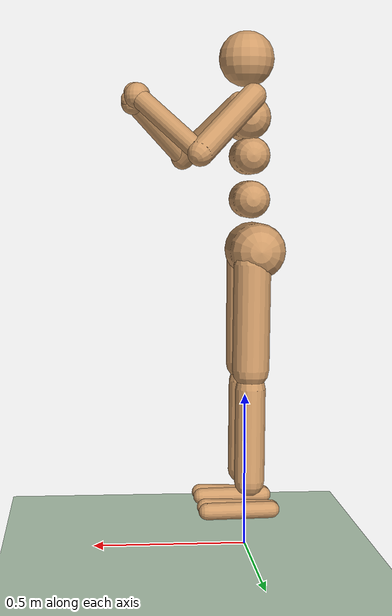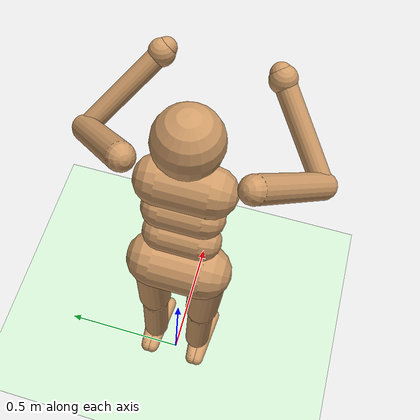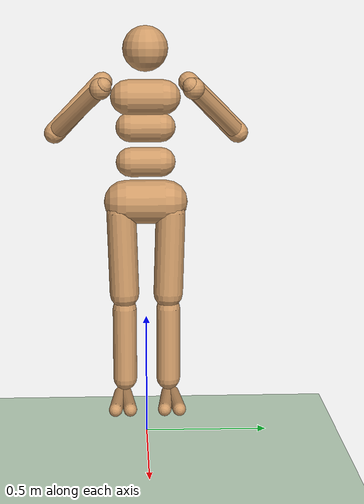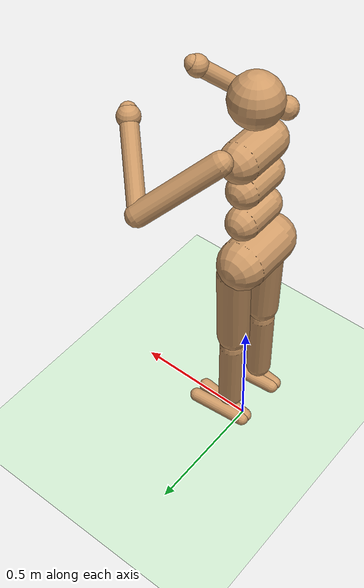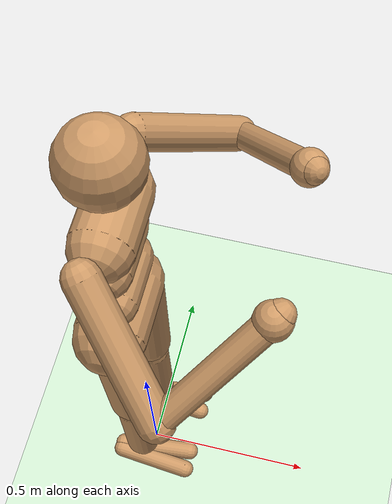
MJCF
<mujoco model='ZeWalk'>
    <compiler angle="degree" inertiafromgeom="true"/>
    <default>
        <joint armature="1" damping="1" limited="true"/>
        <geom conaffinity="1" condim="1" contype="1" margin="0.001" material="geom" rgba="0.8 0.6 .4 1"/>
        <motor ctrllimited="true" ctrlrange="-.4 .4"/>
    </default>
    <option integrator="RK4" iterations="50" solver="PGS" timestep="0.003">
    </option>
    <size nkey="5" nuser_geom="1"/>

    <visual>
        <map fogend="5" fogstart="3"/>
    </visual>

    <asset>
        <texture builtin="gradient" height="100" rgb1=".4 .5 .6" rgb2="0 0 0" type="skybox" width="100"/>
        <texture builtin="flat" height="1278" mark="cross" markrgb="1 1 1" name="texgeom" random="0.01" rgb1="0.8 0.6 0.4" rgb2="0.8 0.6 0.4" type="cube" width="127"/>
        <texture builtin="checker" height="100" name="texplane" rgb1="0 0 0" rgb2="0.8 0.8 0.8" type="2d" width="100"/>
        <material name="MatPlane" reflectance="0.5" shininess="1" specular="1" texrepeat="60 60" texture="texplane"/>
        <material name="geom" texture="texgeom" texuniform="true"/>
    </asset>

    <worldbody>
        <light cutoff="100" diffuse="1 1 1" dir="-0 0 -1.3" directional="true" exponent="1" pos="0 0 1.3" specular=".1 .1 .1"/>
        <geom condim="3" friction="1.5 .1 .1" material="MatPlane" name="floor" pos="0 0 0" rgba="0.8 0.9 0.8 1" size="20 20 0.125" type="plane"/>

        <body name='torso' pos='0 0 1.4'>
            <joint name='root' type='free' pos='0 0 0' limited='false' damping='0' armature='0' stiffness='0'/>
            <geom name='torso1' type='capsule' fromto='0 -.07 0 0 .07 0'  size='0.07' />
            <geom name="head" pos="0 0 .19" size=".09" type="sphere" user="258" />
            <geom name='uwaist' type='capsule' fromto='-.01 -.06 -.12 -.01 .06 -.12' size='0.06' />
            <body name='lwaist' pos='-.01 0 -0.260' quat='1.000 0 -0.002 0' >
                <geom name='lwaist' type='capsule' fromto='0 -.06 0 0 .06 0'  size='0.06'  />
                <joint name='abdomen_z' type='hinge' pos='0 0 0.065' axis='0 0 1' range='-45 45' damping='5' stiffness='20' armature='0.02' />
                <joint name='abdomen_y' type='hinge' pos='0 0 0.065' axis='0 1 0' range='-75 30' damping='5' stiffness='10' armature='0.02' />
                <body name='pelvis' pos='0 0 -0.165' quat='1.000 0 -0.002 0' >
                    <joint name='abdomen_x' type='hinge' pos='0 0 0.1' axis='1 0 0' range='-35 35' damping='5' stiffness='10' armature='0.02' />
                    <geom name='butt' type='capsule' fromto='-.02 -.08 0 -.02 .08 0'  size='0.09'  />
                    <body name='right_thigh' pos='0 -0.10 -0.04' >
                        <joint name='right_hip_x' type='hinge' pos='0 0 0' axis='1 0 0' range='-25 5'   damping='5' stiffness='10' armature='0.01' />
                        <joint name='right_hip_z' type='hinge' pos='0 0 0' axis='0 0 1' range='-60 35'  damping='5' stiffness='10' armature='0.01' />
                        <joint name='right_hip_y' type='hinge' pos='0 0 0' axis='0 1 0' range='-110 20' damping='5' stiffness='20' armature='0.0080' />
                        <geom name='right_thigh1' type='capsule' fromto='0 0 0 0 0.01 -.34'  size='0.06' />
                        <body name='right_shin' pos='0 0.01 -0.403' >
                            <joint name='right_knee' type='hinge' pos='0 0 .02' axis='0 -1 0' range='-160 5' armature='0.0060' />
                            <geom name='right_shin1' type='capsule' fromto='0 0 0 0 0 -.3'   size='0.049' />
                            <body name='right_foot' pos='0 0 -.39' >
                                <joint name='right_ankle_y' type='hinge' pos='0 0 0.08' axis='0 1 0'   range='-40 40' stiffness='4' armature='0.0008' />
                                <joint name='right_ankle_z' type='hinge' pos='0 0 0.04' axis='0 0 1' range='-40 40' stiffness='1'  armature='0.0006' />
                                <joint name='right_ankle_x' type='hinge' pos='0 0 0.04' axis='1 0 0' range='-40 40' stiffness='1'  armature='0.0006' />
                                <geom name="right_foot_cap1" type="capsule" fromto="-.07 -0.02 0 0.14 -0.04 0" size="0.027"/>
                                <geom name="right_foot_cap2" type="capsule" fromto="-.07 0 0 0.14  0.02 0" size="0.027"/>
                            </body>
                        </body>
                    </body>
                    <body name='left_thigh' pos='0 0.10 -0.04' >
                        <joint name='left_hip_x' type='hinge' pos='0 0 0' axis='-1 0 0' range='-25 5'  damping='5' stiffness='10' armature='0.01' />
                        <joint name='left_hip_z' type='hinge' pos='0 0 0' axis='0 0 -1' range='-60 35' damping='5' stiffness='10' armature='0.01' />
                        <joint name='left_hip_y' type='hinge' pos='0 0 0' axis='0 1 0' range='-120 20' damping='5' stiffness='20' armature='0.01' />
                        <geom name='left_thigh1' type='capsule' fromto='0 0 0 0 -0.01 -.34'  size='0.06' />
                        <body name='left_shin' pos='0 -0.01 -0.403' >
                            <joint name='left_knee' type='hinge' pos='0 0 .02' axis='0 -1 0' range='-160 5' stiffness='1' armature='0.0060' />
                            <geom name='left_shin1' type='capsule' fromto='0 0 0 0 0 -.3'   size='0.049' />
                            <body name='left_foot' pos='0 0 -.39' >
                                <joint name='left_ankle_y' type='hinge' pos='0 0 0.08' axis='0 1 0' range='-40 40'  stiffness='4' armature='0.0008' />
                                <joint name='left_ankle_z' type='hinge' pos='0 0 0.04' axis='0 0 1' range='-40 40'  stiffness='1'  armature='0.0006' />
                                <joint name='left_ankle_x' type='hinge' pos='0 0 0.04' axis='-1 0 0' range='-40 40'  stiffness='1'  armature='0.0006' />
                                <geom name="left_foot_cap1" type="capsule" fromto="-.07 0.02 0 0.14 0.04 0" size="0.027"/>
                                <geom name="left_foot_cap2" type="capsule" fromto="-.07 0 0 0.14  -0.02 0" size="0.027"/>
                            </body>
                        </body>
                    </body>
                </body>
            </body>
            <body name='right_upper_arm' pos='0 -0.17 0.06' >
                <joint name='right_shoulder1' type='hinge' pos='0 0 0' axis='2 1 1'  range='-85 60' stiffness='1' armature='0.0068' />
                <joint name='right_shoulder2' type='hinge' pos='0 0 0' axis='0 -1 1' range='-85 60' stiffness='1'  armature='0.0051' />
                <geom name='right_uarm1' type='capsule' fromto='0 0 0 .18 -.18 -.18'  size='0.04 0.16' />
                <body name='right_lower_arm' pos='.18 -.18 -.18' >
                    <joint name='right_elbow' type='hinge' pos='0 0 0' axis='0 -1 1' range='-90 50'  stiffness='0' armature='0.0028' />
                    <geom name='right_larm' type='capsule' fromto='0.01 0.01 0.01 .19 .19 .19'  size='0.031' />
                    <geom name='right_hand' type='sphere' pos='.18 .18 .18'  size='0.04' />
                </body>
            </body>
            <body name='left_upper_arm' pos='0 0.17 0.06' >
                <joint name='left_shoulder1' type='hinge' pos='0 0 0' axis='2 -1 1' range='-60 85' stiffness='1' armature='0.0068' />
                <joint name='left_shoulder2' type='hinge' pos='0 0 0' axis='0 1 1' range='-60 85'  stiffness='1' armature='0.0051' />
                <geom name='left_uarm1' type='capsule' fromto='0 0 0 .18 .18 -.18'  size='0.04 0.16'  />
                <body name='left_lower_arm' pos='.18 .18 -.18' >
                    <joint name='left_elbow' type='hinge' pos='0 0 0' axis='0 -1 -1' range='-90 50' stiffness='0' armature='0.0028' />
                    <geom name='left_larm' type='capsule' fromto='0.01 -0.01 0.01 .19 -.19 .19'  size='0.031'  />
                    <geom name='left_hand' type='sphere' pos='.18 -.18 .18'  size='0.04' />
                </body>
            </body>
        </body>
    </worldbody>

    <tendon>
        <fixed name="left_hipknee">
            <joint coef="-1" joint="left_hip_y"/>
            <joint coef="1" joint="left_knee"/>
        </fixed>
        <fixed name="right_hipknee">
            <joint coef="-1" joint="right_hip_y"/>
            <joint coef="1" joint="right_knee"/>
        </fixed>
    </tendon>

    <actuator>
        <motor name='right_ankle_y'   gear='150' joint='right_ankle_y' />
        <motor name='right_ankle_z'   gear='100' joint='right_ankle_z' />
        <motor name='right_ankle_x'   gear='100' joint='right_ankle_x' />

        <motor name='left_ankle_y'    gear='150' joint='left_ankle_y' />
        <motor name='left_ankle_z'    gear='100' joint='left_ankle_z' />
        <motor name='left_ankle_x'    gear='100' joint='left_ankle_x' />

        <motor gear="100" joint="abdomen_y" name="abdomen_y"/>
        <motor gear="100" joint="abdomen_z" name="abdomen_z"/>
        <motor gear="100" joint="abdomen_x" name="abdomen_x"/>
        <motor gear="100" joint="right_hip_x" name="right_hip_x"/>
        <motor gear="100" joint="right_hip_z" name="right_hip_z"/>
        <motor gear="300" joint="right_hip_y" name="right_hip_y"/>
        <motor gear="200" joint="right_knee" name="right_knee"/>
        <motor gear="100" joint="left_hip_x" name="left_hip_x"/>
        <motor gear="100" joint="left_hip_z" name="left_hip_z"/>
        <motor gear="300" joint="left_hip_y" name="left_hip_y"/>
        <motor gear="200" joint="left_knee" name="left_knee"/>
        <motor gear="25" joint="right_shoulder1" name="right_shoulder1"/>
        <motor gear="25" joint="right_shoulder2" name="right_shoulder2"/>
        <motor gear="25" joint="right_elbow" name="right_elbow"/>
        <motor gear="25" joint="left_shoulder1" name="left_shoulder1"/>
        <motor gear="25" joint="left_shoulder2" name="left_shoulder2"/>
        <motor gear="25" joint="left_elbow" name="left_elbow"/>
    </actuator>

</mujoco>
